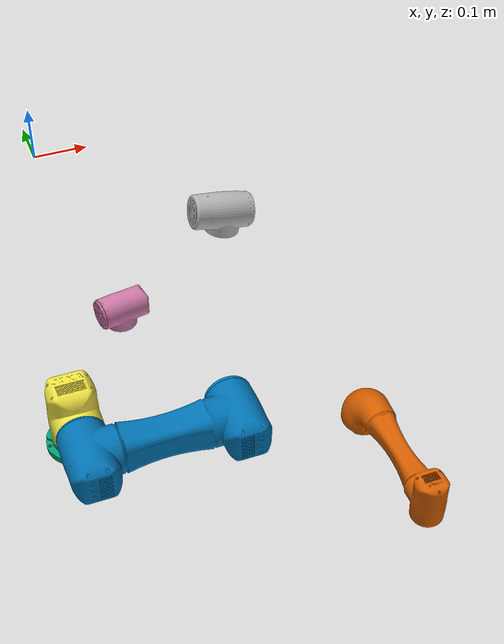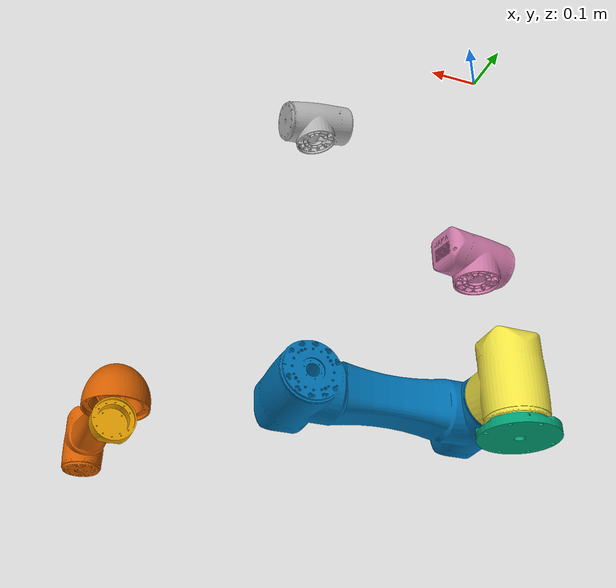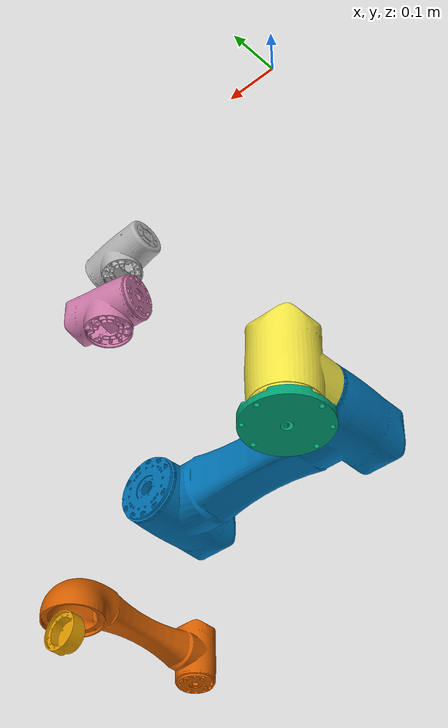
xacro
<?xml version="1.0" ?>
<robot xmlns:xacro="http://www.ros.org/wiki/xacro" name="jakaUr">
<xacro:property name="pi" value="3.14159265358"/>

 <material name="blue">
    <color rgba="0 0 0.8 1"/>
  </material>

  <material name="black">
    <color rgba="0 0 0 1"/>
  </material>

  <material name="white">
    <color rgba="1 1 1 1"/>
  </material>

  <link name="world">
      <origin rpy="0 0 0" xyz="0 0 -0.2"/>
  </link>
  <joint name="fixed" type="fixed">
 <origin rpy="0 0 0" xyz="0 0 -0.8"/>
    <parent link="world"/>
    <child link="base_link"/>
  </joint>

 <joint name="bottom_joint" type="fixed">
    <origin xyz="0 0 0" rpy="0 0 0" />
    <parent link="base_link"/>
    <child link="bottom_link"/>
  </joint>

  <link name="bottom_link">

 <inertial>
      <mass value="5"/>
      <inertia ixx="0.2" ixy="0.0" ixz="0.0" iyy="0.2" iyz="0.0" izz="0.1"/>
    </inertial>

  </link>

  <link name="base_link">
    <visual>
      <origin rpy="0 ${pi / 2} 0" xyz="0 0 0"/>
      <geometry>
        <mesh filename="package://jaka_ur_description_pkg/mesh/p1.dae"/>
      </geometry>
    </visual>

    <collision>
      <geometry>
         <mesh filename="package://jaka_ur_description_pkg/mesh/p1.dae"/>
     </geometry>
      <origin rpy="0 ${pi / 2} 0" xyz="0 0 0"/>
    </collision>

  </link>

  <link name="link_1">
    <visual>
      <geometry>
         <mesh filename="package://jaka_ur_description_pkg/mesh/p2.dae"/>
      </geometry>
      <origin rpy=" ${pi/2.0}  0  ${-pi/2.0}" xyz="0 0 0"/>
    </visual>

    <collision>
      <geometry>
         <mesh filename="package://jaka_ur_description_pkg/mesh/p2.dae"/>
      </geometry>
      <origin rpy="${pi/2.0} 0 ${-pi/2.0}" xyz="0 0 0"/>
    </collision>

     <inertial>
   <mass value="8"/>
      <inertia ixx="0.3" ixy="0.0" ixz="0.0" iyy="0.3" iyz="0.0" izz="0.2"/>
    </inertial>
  </link>

  <joint name="joint_1" type="revolute">
   <axis xyz="0 0 1"/>
    <limit effort="1000" lower="-1.58" upper="1.58" velocity="0.5"/>
    <origin rpy="0 0 0" xyz="0 0 0.094"/>
    <parent link="base_link"/>
    <child link="link_1"/>
  </joint>

  <transmission name="joint_1_trans">
    <type>transmission_interface/SimpleTransmission</type>
    <actuator name="$joint_1_motor">
      <mechanicalReduction>1</mechanicalReduction>
    </actuator>
    <joint name="joint_1">
      <hardwareInterface>PositionJointInterface</hardwareInterface>
    </joint>
  </transmission>

  <link name="link_2">
    <visual>
      <geometry>
         <mesh filename="package://jaka_ur_description_pkg/mesh/p3.dae"/>
      </geometry>
      <origin rpy="${pi/2.0} ${-pi/2.0} ${5.0*pi/6.0}" xyz="0 0 0"/>
   </visual>

    <collision>
      <geometry>
         <mesh filename="package://jaka_ur_description_pkg/mesh/p3.dae"/>
      </geometry>
      <origin rpy="${pi/2.0} ${-pi/2.0} ${5.0*pi/6.0} " xyz="0 0 0"/>
  </collision>

    <inertial>
   <mass value="6"/>
      <inertia ixx="0.25" ixy="0.0" ixz="0.0" iyy="0.25" iyz="0.0" izz="0.15"/>
    </inertial>

  </link>

  <joint name="joint_2" type="revolute">
   <axis xyz="0 0 1"/>
    <limit effort="1000" lower="-1.58" upper="3.58" velocity="0.5"/>
    <origin rpy="${pi/2.0} 0 0" xyz="0 0 0"/>
    <parent link="link_1"/>
    <child link="link_2"/>
  </joint>

  <transmission name="joint_2_trans">
    <type>transmission_interface/SimpleTransmission</type>
    <actuator name="$joint_2_motor">
      <mechanicalReduction>1</mechanicalReduction>
    </actuator>
    <joint name="joint_2">
      <hardwareInterface>PositionJointInterface</hardwareInterface>
    </joint>
  </transmission>

  <link name="link_3">
    <visual>
      <geometry>
         <mesh filename="package://jaka_ur_description_pkg/mesh/p4.dae"/>
      </geometry>
      <origin rpy="0 0 ${-pi/2.0}" xyz="0 0 0.0135"/>
   </visual>

     <collision>
      <geometry>
         <mesh filename="package://jaka_ur_description_pkg/mesh/p4.dae"/>
      </geometry>
      <origin rpy="0 0 ${-pi/2.0}" xyz="0 0 0.0135"/>
   </collision>

    <inertial>
   <mass value="8"/>
      <inertia ixx="0.3" ixy="0.0" ixz="0.0" iyy="0.3" iyz="0.0" izz="0.2"/>
    </inertial>

  </link>

  <joint name="joint_3" type="revolute">
   <axis xyz="0 0 1"/>
    <limit effort="1000" lower="-1.58" upper="3.58" velocity="0.5"/>
    <origin rpy="0 0 0" xyz="0.353 0 0"/>
    <parent link="link_2"/>
    <child link="link_3"/>
  </joint>

  <transmission name="joint_3_trans">
    <type>transmission_interface/SimpleTransmission</type>
    <actuator name="joint_3_motor">
      <mechanicalReduction>1</mechanicalReduction>
    </actuator>
    <joint name="joint_3">
      <hardwareInterface>PositionJointInterface</hardwareInterface>
    </joint>
  </transmission>

  <link name="link_4">
    <visual>
      <geometry>
         <mesh filename="package://jaka_ur_description_pkg/mesh/p5.dae"/>
      </geometry>
      <origin rpy="${-pi/2.0} 0 ${pi/2.0}" xyz="0 0 0"/>
   </visual>

    <collision>
       <geometry>
         <mesh filename="package://jaka_ur_description_pkg/mesh/p5.dae"/>
      </geometry>
      <origin rpy="${-pi/2.0} 0 ${pi/2.0}" xyz="0 0 0"/>
    </collision>

    <inertial>
     <mass value="5"/>
      <inertia ixx="0.2" ixy="0.0" ixz="0.0" iyy="0.2" iyz="0.0" izz="0.15"/>
    </inertial>

  </link>

  <joint name="joint_4" type="revolute">
   <axis xyz="0 0 1"/>
    <limit effort="1000" lower="-1.58" upper="3.58" velocity="0.5"/>
    <origin rpy="0 0 0" xyz="0.31 0 0.109"/>
    <parent link="link_3"/>
    <child link="link_4"/>
  </joint>

<transmission name="joint_4_trans">
    <type>transmission_interface/SimpleTransmission</type>
    <actuator name="joint_4_motor">
      <mechanicalReduction>1</mechanicalReduction>
    </actuator>
    <joint name="joint_4">
      <hardwareInterface>PositionJointInterface</hardwareInterface>
    </joint>
  </transmission>

  <link name="link_5">
    <visual>
      <geometry>
         <mesh filename="package://jaka_ur_description_pkg/mesh/p6.dae"/>
      </geometry>
      <origin rpy="${pi} 0 ${-pi/2.0}" xyz="0 0 0"/>
   </visual>

    <collision>
     <geometry>
         <mesh filename="package://jaka_ur_description_pkg/mesh/p6.dae"/>
      </geometry>
      <origin rpy="${pi} 0 ${-pi/2.0}" xyz="0 0 0"/>
  </collision>

    <inertial>
   <mass value="4"/>
      <inertia ixx="0.1" ixy="0.0" ixz="0.0" iyy="0.1" iyz="0.0" izz="0.07"/>
    </inertial>

  </link>

  <joint name="joint_5" type="revolute">
   <axis xyz="0 0 1"/>
    <limit effort="1000" lower="-1.58" upper="3.58" velocity="0.5"/>
    <origin rpy="${pi/2.0} 0 0" xyz="0 -0.0955 0"/>
    <parent link="link_4"/>
    <child link="link_5"/>
  </joint>

<transmission name="joint_5_trans">
    <type>transmission_interface/SimpleTransmission</type>
    <actuator name="joint_5_motor">
      <mechanicalReduction>1</mechanicalReduction>
    </actuator>
    <joint name="joint_5">
      <hardwareInterface>PositionJointInterface</hardwareInterface>
    </joint>
  </transmission>

  <link name="link_6">
    <visual>
      <geometry>
         <mesh filename="package://jaka_ur_description_pkg/mesh/p7.dae"/>
      </geometry>
      <origin rpy="${-pi} 0 0" xyz="0 0 0.03"/>
   </visual>

       <collision>
      <geometry>
         <mesh filename="package://jaka_ur_description_pkg/mesh/p7.dae"/>
      </geometry>
      <origin rpy="${-pi} 0 0" xyz="0 0 0.03"/>
       </collision>

     <inertial>
  <mass value="2"/>
      <inertia ixx="0.07" ixy="0.0" ixz="0.0" iyy="0.07" iyz="0.0" izz="0.04"/>
     </inertial>

  </link>

  <joint name="joint_6" type="revolute">
   <axis xyz="0 0 1"/>
    <limit effort="1000" lower="-1.58" upper="3.58" velocity="0.5"/>
    <origin rpy="${pi/2.0} 0 0" xyz="0 0.085 0"/>
    <parent link="link_5"/>
    <child link="link_6"/>
  </joint>

<transmission name="joint_6_trans">
    <type>transmission_interface/SimpleTransmission</type>
    <actuator name="joint_6_motor">
      <mechanicalReduction>1</mechanicalReduction>
    </actuator>
    <joint name="joint_6">
      <hardwareInterface>PositionJointInterface</hardwareInterface>
    </joint>
  </transmission>

<!-- ros_control plugin -->
  <gazebo>
    <plugin name="gazebo_ros_control" filename="libgazebo_ros_control.so">
      <robotNamespace>/jakaUr</robotNamespace>
    </plugin>
  </gazebo>
</robot>
